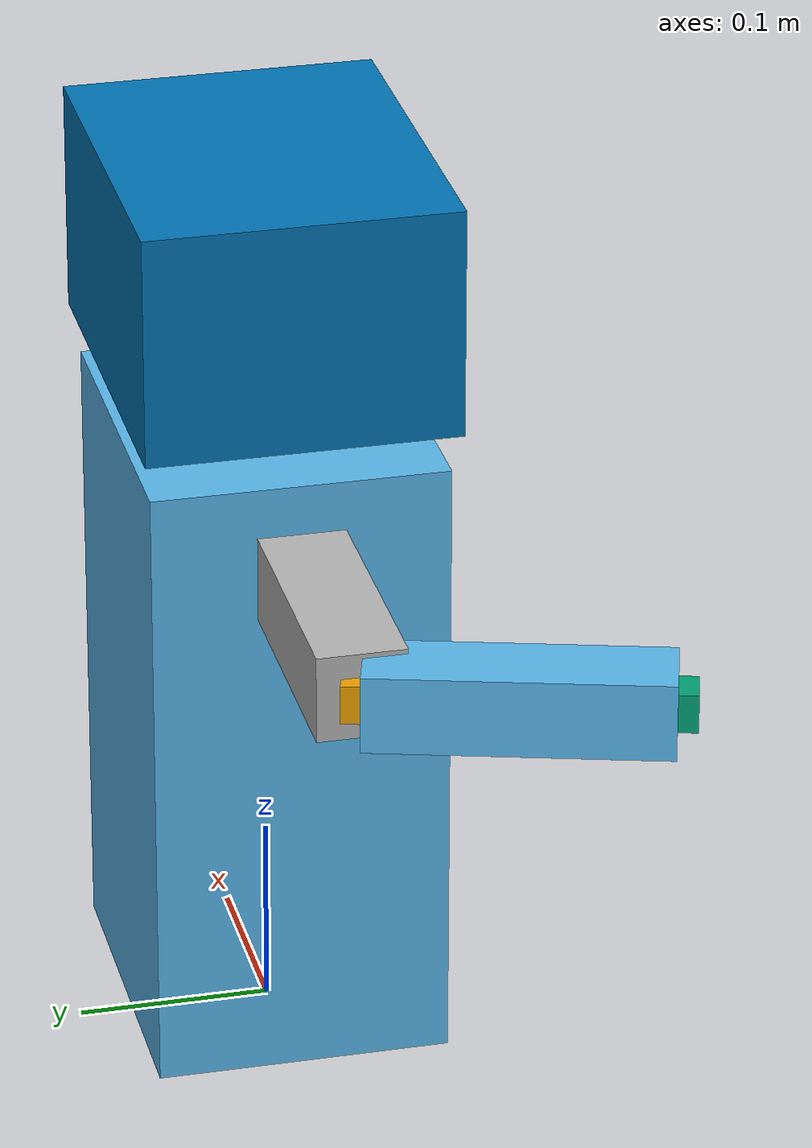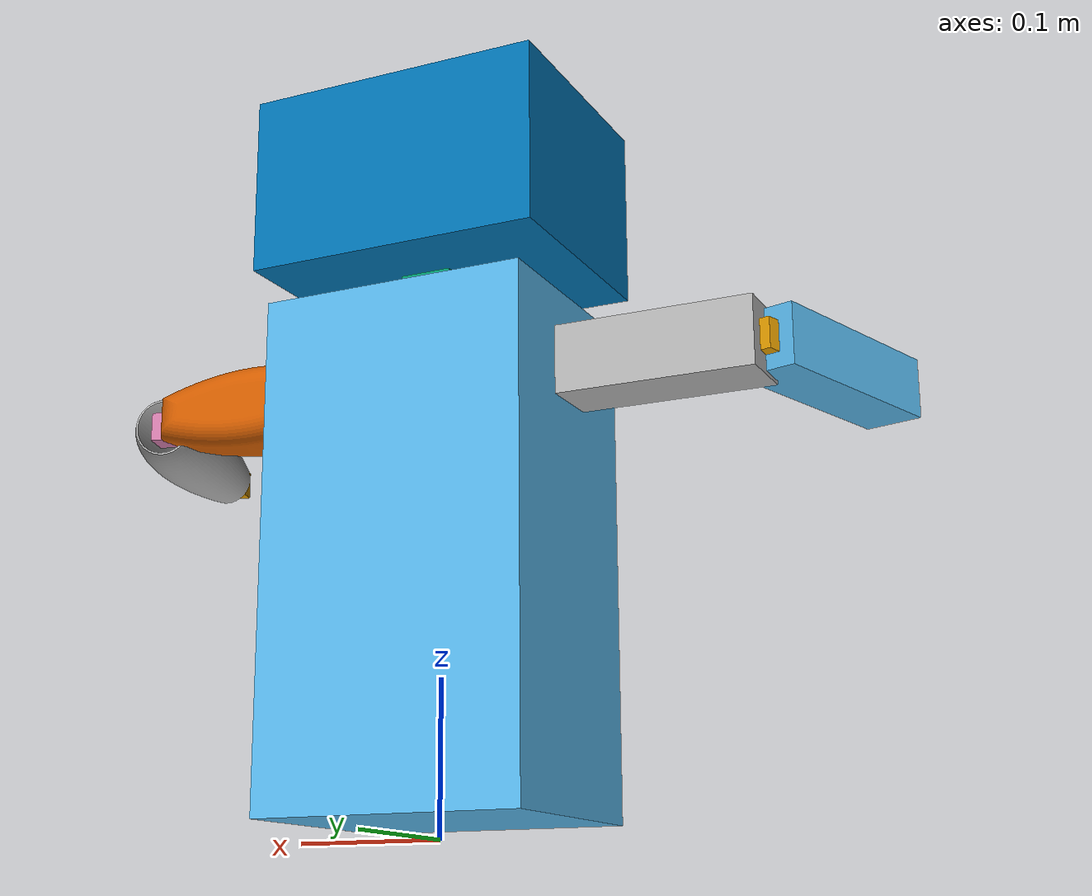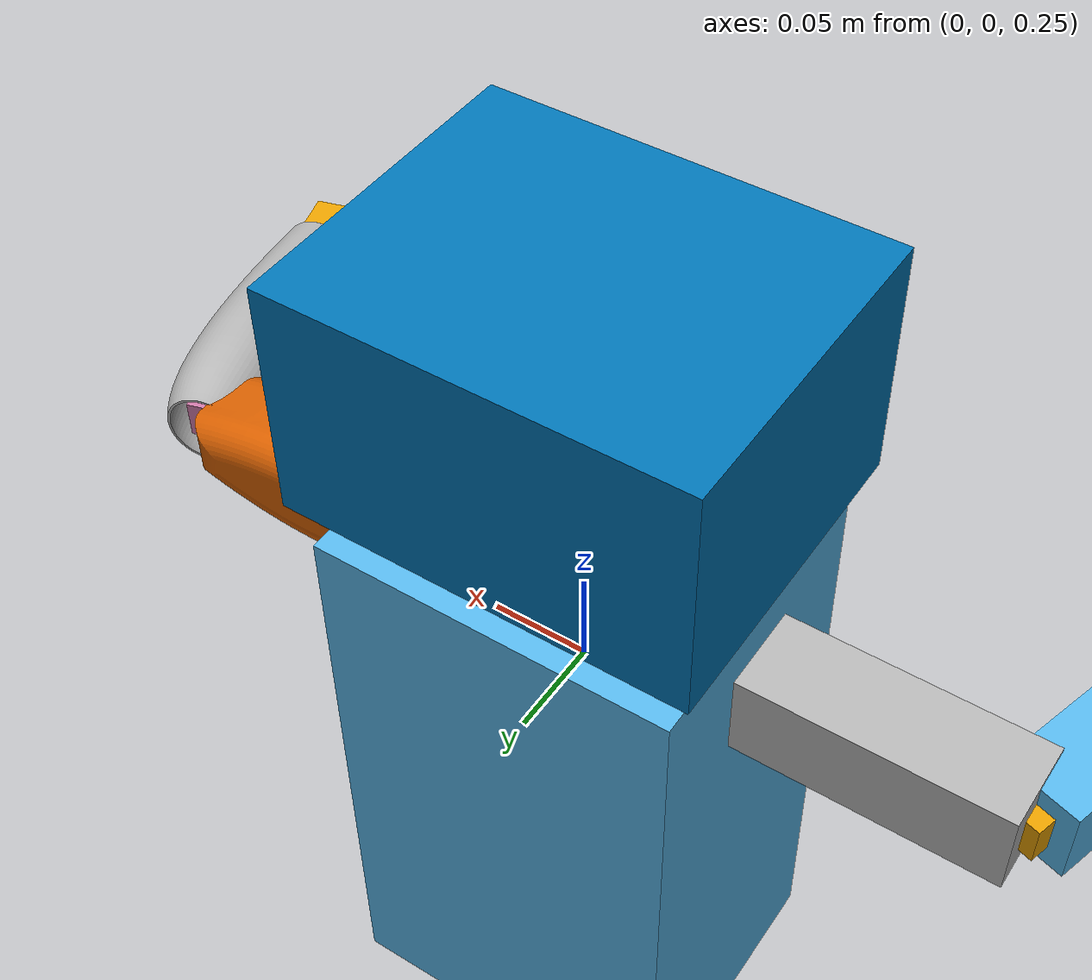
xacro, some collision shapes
<?xml version="1.0"?>
<robot name="philos" xmlns:xacro="https://www.ros.org/wiki/xacro">
	<!-- Include xacro macro -->
	<xacro:include filename="$(find philos)/urdf/joints_transmissions.xacro"/>

	<!-- predefined values -->
	<xacro:property name="arm_length" value="0.155"/>
	<xacro:property name="forearm_length" value="0.15"/>

	<xacro:property name="shoulder_x_location" value = "0.065"/>
	<xacro:property name="shoulder_y_location" value = "0"/>
	<xacro:property name="shoulder_z_location" value = "0.292"/>
	<xacro:property name="elbow_row_offset" value="0.3"/>

	<!-- robot description -->
	<link name="world"/>

	<joint name="fixed" type="fixed">
		<parent link="world"/>
		<child link="body"/>
	</joint>

	<link name="body">
		<visual>
			<origin rpy="1.57 0 0" xyz="-.0965 0.1 -0.13"/>
			<geometry>
				<mesh filename= "package://philos/meshes/body.STL" scale = "0.001 0.001 0.001"/>
			</geometry>
		</visual>
		<collision>
			<origin rpy="0 0 0" xyz="0 0 0.1758"/>
			<geometry>
				<box size="0.18 0.15213 0.33"/>
			</geometry>
		</collision>
		<inertial>
			<origin rpy="0 0 0" xyz="0 0 0.1758"/>
			<mass value="10" />
			<inertia ixx="1.0" ixy="0.0" ixz="0.0" iyy="1.0" iyz="0.0" izz="1.0" />
		</inertial>
	</link>

	<joint_revolute name = "neck_row_joint" axis = "1 0 0" child = "neck_bottom" parent = "body"  e_limit = "1000" l_limit = "-0.5" u_limit = "0.5" v_limit = "0.5" origin_rpy = "0 0 0" origin_xyz = "0 0 0.35" mechanicalReduction = "1"/>

	<link name="neck_bottom">
		<visual>
			<origin rpy="0 0 0" xyz="0 0 0.011"/>
			<geometry>
				<box size="0.035 0.056 0.022"/>
			</geometry>
		</visual>
		<!-- collision for the neck is turned off -->
		<inertial>
			<origin rpy="0 0 0" xyz="0 0 0.011"/>
			<mass value="10" />
			<inertia ixx="1.0" ixy="0.0" ixz="0.0" iyy="1.0" iyz="0.0" izz="1.0" />
		</inertial>
	</link>

	<joint_revolute name = "neck_yaw_joint" axis = "0 0 1" child = "neck_top" parent = "neck_bottom"  e_limit = "1000" l_limit = "-1.507" u_limit = "1.507" v_limit = "0.5" origin_rpy = "0 0 0" origin_xyz = "0 0 0.022" mechanicalReduction = "1"/>

	<link name = "neck_top">
		<visual>
			<origin rpy = "0 0 0" xyz = "0 0 0.011"/>
			<geometry>
				<box size = "0.035 0.056 0.022"/>
			</geometry>
		</visual>
		<!-- collision for the neck is turned off -->
		<inertial>
			<origin rpy="0 0 0" xyz="0 0 0.011"/>
			<mass value="10" />
			<inertia ixx="1.0" ixy="0.0" ixz="0.0" iyy="1.0" iyz="0.0" izz="1.0" />
		</inertial>
	</link>

	<joint_revolute name = "neck_pitch_joint" axis = "0 1 0" child = "head" parent = "neck_top"  e_limit = "1000" l_limit = "-0.3" u_limit = "0.3" v_limit = "0.5" origin_rpy = "0 0 0" origin_xyz = "0 0 0.022" mechanicalReduction = "1"/>

	<link name="head">
		<visual>
			<origin rpy="1.57 0 0" xyz="-0.113 0.165 -0.06"/>
			<geometry>
				<mesh filename = "package://philos/meshes/head.STL" scale = "0.001 0.001 0.001"/>
			</geometry>
		</visual>
		<collision>
			<origin rpy="0 0 0" xyz="0 0 0.03"/>
			<geometry>
				<box size="0.2 0.16 0.12"/>
			</geometry>
		</collision>
		<inertial>
			<origin rpy="0 0 0" xyz="0 0 0.03"/>
			<mass value="10" />
			<inertia ixx="1.0" ixy="0.0" ixz="0.0" iyy="1.0" iyz="0.0" izz="1.0" />
		</inertial>
	</link>

	<joint_revolute name = "right_shoulder_yaw_joint" axis = "0 0 1" child = "right_shoulder_base" parent = "body" e_limit = "1000" l_limit = "-0.8" u_limit = "1.48" v_limit = "0.5" origin_rpy = "0 0 0" origin_xyz = "-${shoulder_x_location} ${shoulder_y_location} ${shoulder_z_location}" mechanicalReduction = "1"/>

	<link name="right_shoulder_base">
		<visual>
			<origin rpy = "0 0 0" xyz = "0 0 0"/>
			<geometry>
				<box size="0.02 0.02 0.02"/>
			</geometry>
		</visual>
		<inertial>
			<mass value = "0.5"/>
			<inertia ixx="1.0" ixy="0.0" ixz="0.0" iyy="1.0" iyz="0.0" izz="1.0" />
		</inertial>
	</link>

	<joint_revolute name = "right_shoulder_pitch_joint" axis = "0 -1 0" child = "right_shoulder_extension" parent = "right_shoulder_base" e_limit = "1000" l_limit = "-1.507" u_limit = "1.507" v_limit = "0.5" origin_rpy = "0 0 0" origin_xyz = "0 0 0" mechanicalReduction = "1"/>

	<link name = "right_shoulder_extension">
		<visual>
			<origin rpy = "0 0 0" xyz = "0 0 0"/>
			<geometry>
				<box size = "0.02 0.02 0.02"/>
			</geometry>
		</visual>
		<inertial>
			<mass value = "0.5"/>
			<inertia ixx="1.0" ixy="0.0" ixz="0.0" iyy="1.0" iyz="0.0" izz="1.0" />
		</inertial>
	</link>

	<joint_revolute name = "right_shoulder_row_joint" axis="1 0 0" child = "right_arm" parent = "right_shoulder_extension" e_limit = "1000" l_limit = "-1.507" u_limit = "1.507" v_limit = "0.5" origin_rpy = "0 0 0" origin_xyz = "0 0 0" mechanicalReduction = "1"/>

	<link name = "right_arm">
		<visual>
			<origin rpy = "0 1.57 1.57" xyz = "0.005 -0.8 0.769"/>
			<geometry>
					<mesh filename = "package://philos/meshes/right_cover_upper.STL" scale = "0.001 0.0014 0.001"/>
			</geometry>
		</visual>
		<collision>
			<origin rpy = "0 0 0" xyz = "-${arm_length/2} 0 0"/>
			<geometry>
				<box size = "${arm_length} 0.045 0.045"/>
			</geometry>
		</collision>
		<inertial>
			<mass value = "0.5"/>
			<inertia ixx="1.0" ixy="0.0" ixz="0.0" iyy="1.0" iyz="0.0" izz="1.0" />
		</inertial>
	</link>

	<joint_revolute name = "right_elbow_yaw_joint" axis = "0 0 1" child ="right_elbow_extension" parent = "right_arm" e_limit = "1000" l_limit = "${elbow_row_offset}" u_limit = "2.269" v_limit = "0.5" origin_rpy = "0 0 0" origin_xyz = "-${arm_length} 0 0" mechanicalReduction = "1"/>

	<link name = "right_elbow_extension">
		<visual>
			<geometry>
				<box size = "0.02 0.02 0.02"/>
			</geometry>
		</visual>
		<inertial>
			<mass value = "0.5"/>
			<inertia ixx="1.0" ixy="0.0" ixz="0.0" iyy="1.0" iyz="0.0" izz="1.0"/>
		</inertial>
	</link>

	<joint_revolute name = "right_elbow_row_joint" axis = "1 0 0" child = "right_forearm" parent = "right_elbow_extension" e_limit = "1000" l_limit = "-1.507" u_limit = "1.507" v_limit = "0.5" origin_rpy = "0 0 0" origin_xyz = "0 0 0" mechanicalReduction = "1"/>

	<link name = "right_forearm">
		<visual>
			<origin rpy = "0 0 -1.57" xyz = "-0.135 0.028 -0.03"/>
			<geometry>
				<mesh filename = "package://philos/meshes/right_cover_lower.STL" scale = "0.001 0.00135 0.001"/>
			</geometry>
		</visual>
		<collision>
			<origin rpy = "0 0 0" xyz = "-${forearm_length/2} 0 0"/>
			<geometry>
				<box size = "${forearm_length} 0.04 0.04"/>
			</geometry>
		</collision>
		<inertial>
			<mass value = "0.5"/>
			<inertia ixx="1.0" ixy="0.0" ixz="0.0" iyy="1.0" iyz="0.0" izz="1.0"/>
		</inertial>
	</link>

	<joint_revolute name = "right_wrist_pitch_joint" axis = "0 -1 0" child = "right_gripper" parent = "right_forearm" e_limit = "1000" l_limit = "-1.507" u_limit = "1.507" v_limit = "0.5" origin_rpy = "0 0 0" origin_xyz = "-${forearm_length} 0 0" mechanicalReduction = "1"/>

	<link name = "right_gripper">
		<visual>
			<geometry>
				<box size = "0.02 0.02 0.02"/>
			</geometry>
		</visual>
		<collision>
			<geometry>
				<box size = "0.02 0.02 0.02"/>
			</geometry>
		</collision>
		<inertial>
			<mass value = "0.5"/>
			<inertia ixx="1.0" ixy="0.0" ixz="0.0" iyy="1.0" iyz="0.0" izz="1.0"/>
		</inertial>
	</link>

	<joint_revolute name = "left_shoulder_yaw_joint" axis = "0 0 -1" child = "left_shoulder_base" parent = "body" e_limit = "1000" l_limit = "-0.8" u_limit = "1.48" v_limit = "0.5" origin_rpy = "0 0 0" origin_xyz = "${shoulder_x_location} ${shoulder_y_location} ${shoulder_z_location}" mechanicalReduction = "1"/>

	<link name="left_shoulder_base">
		<visual>
			<origin rpy = "0 0 0" xyz = "0 0 0"/>
			<geometry>
				<box size="0.02 0.02 0.02"/>
			</geometry>
		</visual>
		<inertial>
			<mass value = "0.5"/>
			<inertia ixx="1.0" ixy="0.0" ixz="0.0" iyy="1.0" iyz="0.0" izz="1.0" />
		</inertial>
	</link>

	<joint_revolute name = "left_shoulder_pitch_joint" axis = "0 1 0" child = "left_shoulder_extension" parent = "left_shoulder_base" e_limit = "1000" l_limit = "-1.507" u_limit = "1.507" v_limit = "0.5" origin_rpy = "0 0 0" origin_xyz = "0 0 0" mechanicalReduction = "1"/>

	<link name = "left_shoulder_extension">
		<visual>
			<origin rpy = "0 0 0" xyz = "0 0 0"/>
			<geometry>
				<box size = "0.02 0.02 0.02"/>
			</geometry>
		</visual>
		<inertial>
			<mass value = "0.5"/>
			<inertia ixx="1.0" ixy="0.0" ixz="0.0" iyy="1.0" iyz="0.0" izz="1.0" />
		</inertial>
	</link>

	<joint_revolute name = "left_shoulder_row_joint" axis="1 0 0" child = "left_arm" parent = "left_shoulder_extension" e_limit = "1000" l_limit = "-1.507" u_limit = "1.507" v_limit = "0.5" origin_rpy = "0 0 0" origin_xyz = "0 0 0" mechanicalReduction = "1"/>

	<link name = "left_arm">
		<visual>
			<origin rpy = "0 1.57 1.57" xyz = "0.16 -0.8 0.769"/>
			<geometry>
				<mesh filename = "package://philos/meshes/left_cover_upper.STL" scale = "0.001 0.0014 0.001"/>
			</geometry>
		</visual>
		<collision>
			<origin rpy = "0 0 0" xyz = "${arm_length/2} 0 0"/>
			<geometry>
				<box size = "${arm_length} 0.045 0.045"/>
			</geometry>
		</collision>
		<inertial>
			<mass value = "0.5"/>
			<inertia ixx="1.0" ixy="0.0" ixz="0.0" iyy="1.0" iyz="0.0" izz="1.0" />
		</inertial>
	</link>

	<joint_revolute name = "left_elbow_yaw_joint" axis = "0 0 -1" child ="left_elbow_extension" parent = "left_arm" e_limit = "1000" l_limit = "${elbow_row_offset}" u_limit = "2.269" v_limit = "0.5" origin_rpy = "0 0 0" origin_xyz = "${arm_length} 0 0" mechanicalReduction = "1"/>

	<link name = "left_elbow_extension">
		<visual>
			<geometry>
				<box size = "0.02 0.02 0.02"/>
			</geometry>
		</visual>
		<inertial>
			<mass value = "0.5"/>
			<inertia ixx="1.0" ixy="0.0" ixz="0.0" iyy="1.0" iyz="0.0" izz="1.0"/>
		</inertial>
	</link>

	<joint_revolute name = "left_elbow_row_joint" axis = "1 0 0" child = "left_forearm" parent = "left_elbow_extension" e_limit = "1000" l_limit = "-1.507" u_limit = "1.507" v_limit = "0.5" origin_rpy = "0 0 0" origin_xyz = "0 0 0" mechanicalReduction = "1"/>

	<link name = "left_forearm">
		<visual>
			<origin rpy = "0 0 1.57" xyz = "0.135 -0.028 -0.03"/>
			<geometry>
				<mesh filename = "package://philos/meshes/left_cover_lower.STL" scale = "0.001 0.00135 0.001"/>
			</geometry>
		</visual>
		<collision>
			<origin rpy = "0 0 0" xyz = "${forearm_length/2} 0 0"/>
			<geometry>
				<box size = "${forearm_length} 0.04 0.04"/>
			</geometry>
		</collision>
		<inertial>
			<mass value = "0.5"/>
			<inertia ixx="1.0" ixy="0.0" ixz="0.0" iyy="1.0" iyz="0.0" izz="1.0"/>
		</inertial>
	</link>

	<joint_revolute name = "left_wrist_pitch_joint" axis = "0 1 0" child = "left_gripper" parent = "left_forearm" e_limit = "1000" l_limit = "-1.507" u_limit = "1.507" v_limit = "0.5" origin_rpy = "0 0 0" origin_xyz = "${forearm_length} 0 0" mechanicalReduction = "1"/>

	<link name = "left_gripper">
		<visual>
			<geometry>
				<box size = "0.02 0.02 0.02"/>
			</geometry>
		</visual>
		<collision>
			<geometry>
				<box size = "0.02 0.02 0.02"/>
			</geometry>
		</collision>
		<inertial>
			<mass value = "0.5"/>
			<inertia ixx="1.0" ixy="0.0" ixz="0.0" iyy="1.0" iyz="0.0" izz="1.0"/>
		</inertial>
	</link>
	<!-- gazebo_ros_control plug-in -->
	<gazebo>
		<plugin filename="libgazebo_ros_control.so" name="gazebo_ros_control">
			<robotSimType>gazebo_ros_control/DefaultRobotHWSim</robotSimType>
		</plugin>
		<world name="default">
			<gui>
			    <camera name="user_camera">
			      <pose>0.5 -1.2 1 0 0.38 1.85</pose>
			    </camera>
			</gui>
		</world>
	</gazebo>

</robot>

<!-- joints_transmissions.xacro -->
<robot xmlns:xacro="https://www.ros.org/wiki/xacro">
	<xacro:macro name="joint_revolute" params="name axis e_limit l_limit u_limit v_limit origin_rpy origin_xyz parent child mechanicalReduction">
		<joint name="${name}" type="revolute">
			<axis xyz="${axis}"/>
			<limit effort="${e_limit}" lower="${l_limit}" upper="${u_limit}" velocity="${v_limit}"/>
			<origin rpy="${origin_rpy}" xyz="${origin_xyz}"/>
			<parent link="${parent}"/>
			<child link="${child}"/>
		</joint>
		<transmission name="trans_${name}">
			<type>transmission_interface/SimpleTransmission</type>
			<joint name="${name}">
				<hardwareInterface>hardware_interface/PositionJointInterface</hardwareInterface>
			</joint>
			<actuator name="motor_${name}">
				<mechanicalReduction>${mechanicalReduction}</mechanicalReduction>
				<hardwareInterface>hardware_interface/PositionJointInterface</hardwareInterface>
			</actuator>
		</transmission>
	</xacro:macro>
</robot>
